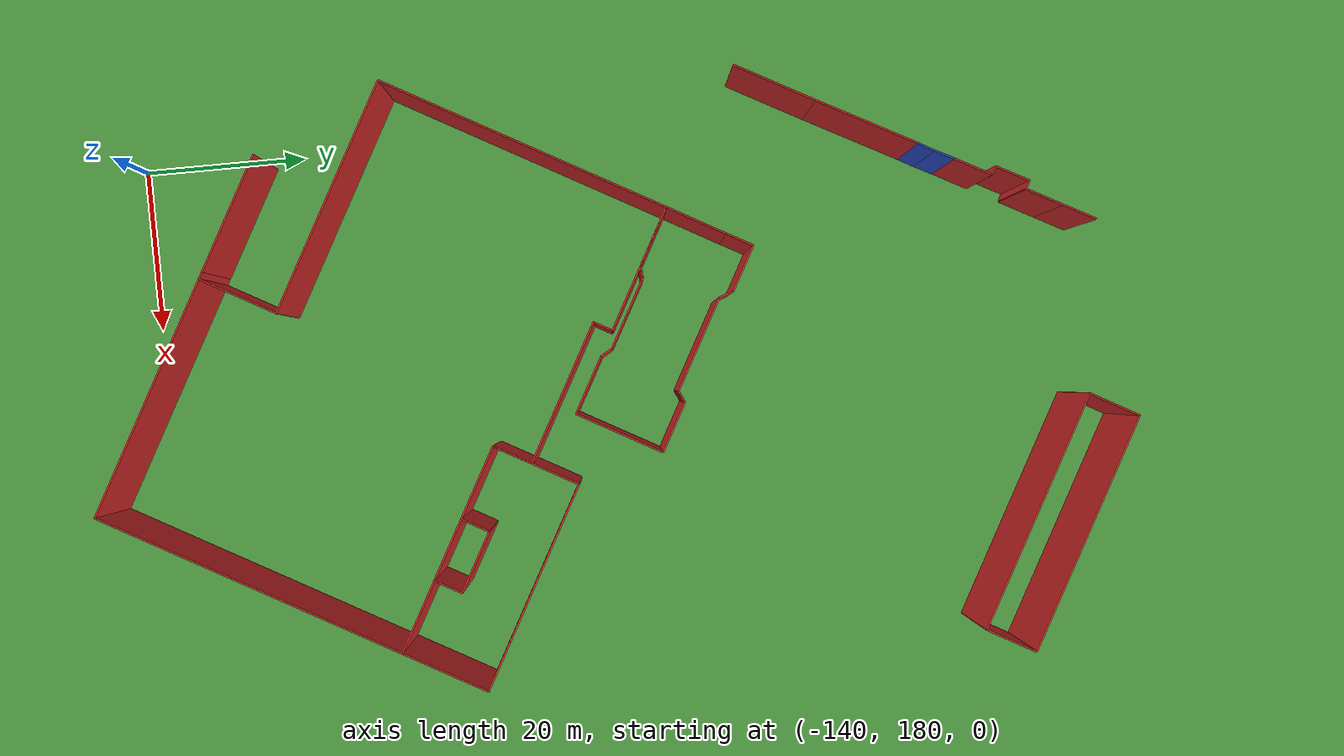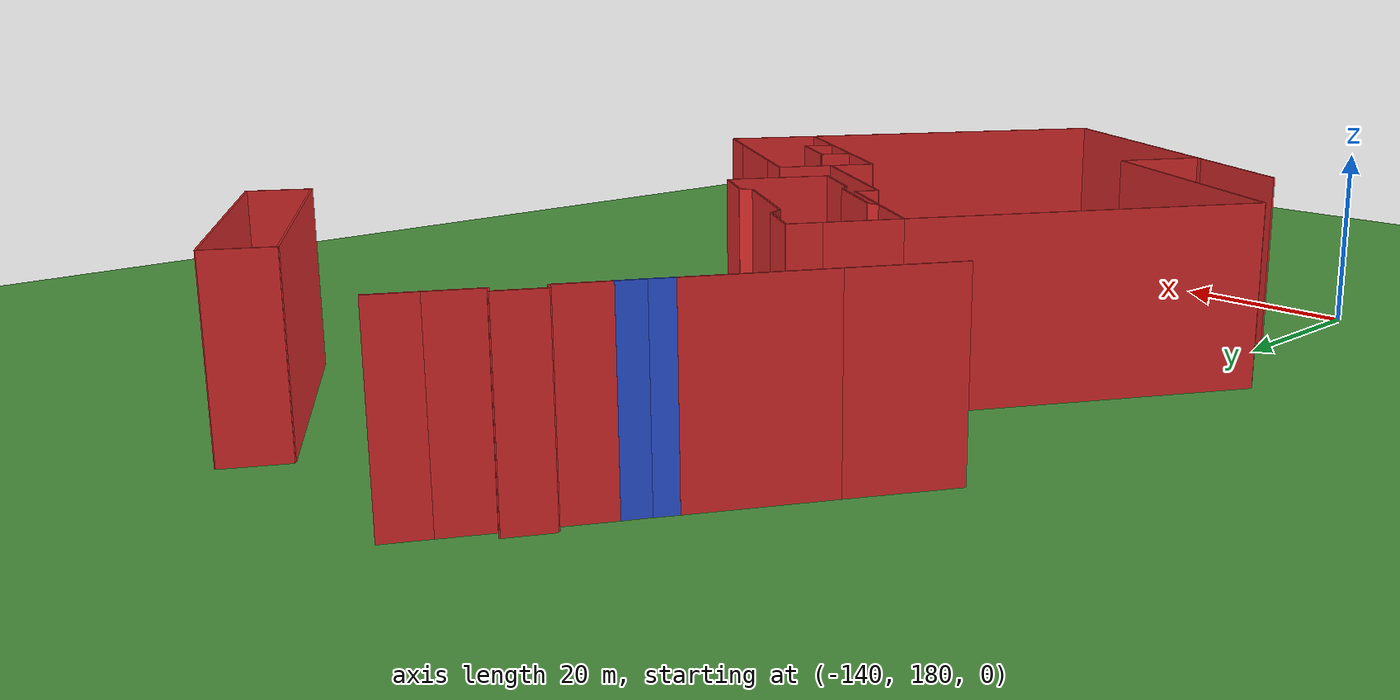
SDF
<sdf version="1.4">
 <world name="default">
  <model name="ground">
   <static>true</static>
   <link name="link">
    <collision name="collision">
     <geometry><plane><size>10000 10000</size><normal>0 0 1</normal></plane></geometry>
     <surface><friction><ode><mu>100</mu><mu2>50</mu2></ode></friction></surface>
    </collision>
    <visual name="visual">
     <pose>0 0 -1 0 0 0</pose>
     <geometry><plane><normal>0 0 1</normal><size>10000 10000</size></plane></geometry>
     <material>
      <script><uri>file://media/materials/scripts/gazebo.material</uri><name>Gazebo/Grass</name></script>
     </material>
    </visual>
   </link>
  </model>
  <include><uri>model://sun</uri></include>
  <model name="office_building_266170578">
   <static>true</static>
   <pose>-125.952255844 289.017301661 0.0 0 0 0</pose>
   <link name="office_building_266170578_0">
    <collision name="office_building_266170578_0">
     <geometry><box><size>4.81621688001 0.2 20.0</size></box></geometry>
    </collision>
    <visual name="office_building_266170578_0">
     <geometry><box><size>4.81621688001 0.2 20.0</size></box></geometry>
     <material>
      <script><uri>file://media/materials/scripts/gazebo.material</uri><name>Gazebo/Red</name></script>
     </material>
    </visual>
    <pose>0.696842534385 0.53481557752 9.0 0 0 1.07510579999</pose>
   </link>
   <link name="office_building_266170578_1">
    <collision name="office_building_266170578_1">
     <geometry><box><size>1.07577772841 0.2 20.0</size></box></geometry>
    </collision>
    <visual name="office_building_266170578_1">
     <geometry><box><size>1.07577772841 0.2 20.0</size></box></geometry>
     <material>
      <script><uri>file://media/materials/scripts/gazebo.material</uri><name>Gazebo/Red</name></script>
     </material>
    </visual>
    <pose>-0.921116629011 -1.32654261835 9.0 0 0 -0.49795429977</pose>
   </link>
  </model>
  <model name="office_building_266170575">
   <static>true</static>
   <pose>-128.385688273 286.014695271 0.0 0 0 0</pose>
   <link name="office_building_266170575_0">
    <collision name="office_building_266170575_0">
     <geometry><box><size>4.38974615655 0.2 20.0</size></box></geometry>
    </collision>
    <visual name="office_building_266170575_0">
     <geometry><box><size>4.38974615655 0.2 20.0</size></box></geometry>
     <material>
      <script><uri>file://media/materials/scripts/gazebo.material</uri><name>Gazebo/Red</name></script>
     </material>
    </visual>
    <pose>0.0 0.0 9.0 0 0 1.0772903887</pose>
   </link>
  </model>
  <model name="The Muse Hotel">
   <static>true</static>
   <pose>-138.866614714 264.271799401 0.0 0 0 0</pose>
   <link name="The Muse Hotel_0">
    <collision name="The Muse Hotel_0">
     <geometry><box><size>13.1884343296 0.2 20.0</size></box></geometry>
    </collision>
    <visual name="The Muse Hotel_0">
     <geometry><box><size>13.1884343296 0.2 20.0</size></box></geometry>
     <material>
      <script><uri>file://media/materials/scripts/gazebo.material</uri><name>Gazebo/Red</name></script>
     </material>
    </visual>
    <pose>2.74113509899 5.06617953824 9.0 0 0 1.07998821693</pose>
   </link>
   <link name="The Muse Hotel_1">
    <collision name="The Muse Hotel_1">
     <geometry><box><size>10.6865483698 0.2 20.0</size></box></geometry>
    </collision>
    <visual name="The Muse Hotel_1">
     <geometry><box><size>10.6865483698 0.2 20.0</size></box></geometry>
     <material>
      <script><uri>file://media/materials/scripts/gazebo.material</uri><name>Gazebo/Red</name></script>
     </material>
    </visual>
    <pose>-2.92462260816 -5.44098211217 9.0 0 0 1.07166077882</pose>
   </link>
  </model>
  <model name="office_building_266170573">
   <static>true</static>
   <pose>-129.562643282 282.318567619 0.0 0 0 0</pose>
   <link name="office_building_266170573_0">
    <collision name="office_building_266170573_0">
     <geometry><box><size>1.07178069066 0.2 20.0</size></box></geometry>
    </collision>
    <visual name="office_building_266170573_0">
     <geometry><box><size>1.07178069066 0.2 20.0</size></box></geometry>
     <material>
      <script><uri>file://media/materials/scripts/gazebo.material</uri><name>Gazebo/Red</name></script>
     </material>
    </visual>
    <pose>0.609776385693 1.51045249202 9.0 0 0 2.65054324767</pose>
   </link>
   <link name="office_building_266170573_1">
    <collision name="office_building_266170573_1">
     <geometry><box><size>4.85856402104 0.2 20.0</size></box></geometry>
    </collision>
    <visual name="office_building_266170573_1">
     <geometry><box><size>4.85856402104 0.2 20.0</size></box></geometry>
     <material>
      <script><uri>file://media/materials/scripts/gazebo.material</uri><name>Gazebo/Red</name></script>
     </material>
    </visual>
    <pose>-0.0686038249688 -0.881576208618 9.0 0 0 1.07721642643</pose>
   </link>
  </model>
  <model name="office_building_266170569">
   <static>true</static>
   <pose>-88.5199435659 219.577163471 0.0 0 0 0</pose>
   <link name="office_building_266170569_0">
    <collision name="office_building_266170569_0">
     <geometry><box><size>3.64909950902 0.2 20.0</size></box></geometry>
    </collision>
    <visual name="office_building_266170569_0">
     <geometry><box><size>3.64909950902 0.2 20.0</size></box></geometry>
     <material>
      <script><uri>file://media/materials/scripts/gazebo.material</uri><name>Gazebo/Red</name></script>
     </material>
    </visual>
    <pose>2.79733237666 -4.90419078675 9.0 0 0 -2.07662020923</pose>
   </link>
   <link name="office_building_266170569_1">
    <collision name="office_building_266170569_1">
     <geometry><box><size>7.9817855313 0.2 20.0</size></box></geometry>
    </collision>
    <visual name="office_building_266170569_1">
     <geometry><box><size>7.9817855313 0.2 20.0</size></box></geometry>
     <material>
      <script><uri>file://media/materials/scripts/gazebo.material</uri><name>Gazebo/Red</name></script>
     </material>
    </visual>
    <pose>0.18991476499 -1.37501116452 9.0 0 0 -0.505654175781</pose>
   </link>
   <link name="office_building_266170569_2">
    <collision name="office_building_266170569_2">
     <geometry><box><size>3.6545025171 0.2 20.0</size></box></geometry>
    </collision>
    <visual name="office_building_266170569_2">
     <geometry><box><size>3.6545025171 0.2 20.0</size></box></geometry>
     <material>
      <script><uri>file://media/materials/scripts/gazebo.material</uri><name>Gazebo/Red</name></script>
     </material>
    </visual>
    <pose>-4.19115547094 -1.03797555307 9.0 0 0 1.06231061086</pose>
   </link>
   <link name="office_building_266170569_3">
    <collision name="office_building_266170569_3">
     <geometry><box><size>9.43505966403 0.2 20.0</size></box></geometry>
    </collision>
    <visual name="office_building_266170569_3">
     <geometry><box><size>9.43505966403 0.2 20.0</size></box></geometry>
     <material>
      <script><uri>file://media/materials/scripts/gazebo.material</uri><name>Gazebo/Red</name></script>
     </material>
    </visual>
    <pose>-9.21158602663 -0.355587733469 9.0 0 0 -0.50405181353</pose>
   </link>
   <link name="office_building_266170569_4">
    <collision name="office_building_266170569_4">
     <geometry><box><size>5.0588712845 0.2 20.0</size></box></geometry>
    </collision>
    <visual name="office_building_266170569_4">
     <geometry><box><size>5.0588712845 0.2 20.0</size></box></geometry>
     <material>
      <script><uri>file://media/materials/scripts/gazebo.material</uri><name>Gazebo/Red</name></script>
     </material>
    </visual>
    <pose>-12.1136391252 4.13379244418 9.0 0 0 -2.07806141253</pose>
   </link>
   <link name="office_building_266170569_5">
    <collision name="office_building_266170569_5">
     <geometry><box><size>6.15006828301 0.2 20.0</size></box></geometry>
    </collision>
    <visual name="office_building_266170569_5">
     <geometry><box><size>6.15006828301 0.2 20.0</size></box></geometry>
     <material>
      <script><uri>file://media/materials/scripts/gazebo.material</uri><name>Gazebo/Red</name></script>
     </material>
    </visual>
    <pose>-9.38921340961 9.03150440354 9.0 0 0 -2.07874555801</pose>
   </link>
   <link name="office_building_266170569_6">
    <collision name="office_building_266170569_6">
     <geometry><box><size>5.76691093643 0.2 20.0</size></box></geometry>
    </collision>
    <visual name="office_building_266170569_6">
     <geometry><box><size>5.76691093643 0.2 20.0</size></box></geometry>
     <material>
      <script><uri>file://media/materials/scripts/gazebo.material</uri><name>Gazebo/Red</name></script>
     </material>
    </visual>
    <pose>-5.3694770705 10.324263407 9.0 0 0 2.63699053114</pose>
   </link>
   <link name="office_building_266170569_7">
    <collision name="office_building_266170569_7">
     <geometry><box><size>14.6986018603 0.2 20.0</size></box></geometry>
    </collision>
    <visual name="office_building_266170569_7">
     <geometry><box><size>14.6986018603 0.2 20.0</size></box></geometry>
     <material>
      <script><uri>file://media/materials/scripts/gazebo.material</uri><name>Gazebo/Red</name></script>
     </material>
    </visual>
    <pose>3.58712274098 5.3756654028 9.0 0 0 2.63676079328</pose>
   </link>
   <link name="office_building_266170569_8">
    <collision name="office_building_266170569_8">
     <geometry><box><size>6.41398778348 0.2 20.0</size></box></geometry>
    </collision>
    <visual name="office_building_266170569_8">
     <geometry><box><size>6.41398778348 0.2 20.0</size></box></geometry>
     <material>
      <script><uri>file://media/materials/scripts/gazebo.material</uri><name>Gazebo/Red</name></script>
     </material>
    </visual>
    <pose>12.8272668766 0.271246522205 9.0 0 0 2.63720308891</pose>
   </link>
   <link name="office_building_266170569_9">
    <collision name="office_building_266170569_9">
     <geometry><box><size>11.2089116679 0.2 20.0</size></box></geometry>
    </collision>
    <visual name="office_building_266170569_9">
     <geometry><box><size>11.2089116679 0.2 20.0</size></box></geometry>
     <material>
      <script><uri>file://media/materials/scripts/gazebo.material</uri><name>Gazebo/Red</name></script>
     </material>
    </visual>
    <pose>12.9104755753 -6.17630855734 9.0 0 0 1.06315627336</pose>
   </link>
   <link name="office_building_266170569_10">
    <collision name="office_building_266170569_10">
     <geometry><box><size>9.45293200304 0.2 20.0</size></box></geometry>
    </collision>
    <visual name="office_building_266170569_10">
     <geometry><box><size>9.45293200304 0.2 20.0</size></box></geometry>
     <material>
      <script><uri>file://media/materials/scripts/gazebo.material</uri><name>Gazebo/Red</name></script>
     </material>
    </visual>
    <pose>6.04967241332 -8.78713603354 9.0 0 0 -0.505042129175</pose>
   </link>
  </model>
  <model name="Onassis High School">
   <static>true</static>
   <pose>-145.194025517 252.41280676 0.0 0 0 0</pose>
  </model>
  <model name="office_building_266170553">
   <static>true</static>
   <pose>-131.234079291 196.658929028 0.0 0 0 0</pose>
   <link name="office_building_266170553_0">
    <collision name="office_building_266170553_0">
     <geometry><box><size>30.2034435022 0.2 20.0</size></box></geometry>
    </collision>
    <visual name="office_building_266170553_0">
     <geometry><box><size>30.2034435022 0.2 20.0</size></box></geometry>
     <material>
      <script><uri>file://media/materials/scripts/gazebo.material</uri><name>Gazebo/Red</name></script>
     </material>
    </visual>
    <pose>-1.99684516476 7.99238693577 9.0 0 0 2.63717236154</pose>
   </link>
   <link name="office_building_266170553_1">
    <collision name="office_building_266170553_1">
     <geometry><box><size>10.0554311707 0.2 20.0</size></box></geometry>
    </collision>
    <visual name="office_building_266170553_1">
     <geometry><box><size>10.0554311707 0.2 20.0</size></box></geometry>
     <material>
      <script><uri>file://media/materials/scripts/gazebo.material</uri><name>Gazebo/Red</name></script>
     </material>
    </visual>
    <pose>8.77762649513 -3.69865926673 9.0 0 0 1.06262161852</pose>
   </link>
   <link name="office_building_266170553_2">
    <collision name="office_building_266170553_2">
     <geometry><box><size>0.940179392899 0.2 20.0</size></box></geometry>
    </collision>
    <visual name="office_building_266170553_2">
     <geometry><box><size>0.940179392899 0.2 20.0</size></box></geometry>
     <material>
      <script><uri>file://media/materials/scripts/gazebo.material</uri><name>Gazebo/Red</name></script>
     </material>
    </visual>
    <pose>5.91980802481 -7.86361914546 9.0 0 0 -0.504978380453</pose>
   </link>
   <link name="office_building_266170553_3">
    <collision name="office_building_266170553_3">
     <geometry><box><size>15.2572092771 0.2 20.0</size></box></geometry>
    </collision>
    <visual name="office_building_266170553_3">
     <geometry><box><size>15.2572092771 0.2 20.0</size></box></geometry>
     <material>
      <script><uri>file://media/materials/scripts/gazebo.material</uri><name>Gazebo/Red</name></script>
     </material>
    </visual>
    <pose>-1.16876655761 -3.94686536393 9.0 0 0 -0.504783442841</pose>
   </link>
  </model>
  <model name="Comfort Inn Midtown">
   <static>true</static>
   <pose>-115.609313291 243.794765405 0.0 0 0 0</pose>
   <link name="Comfort Inn Midtown_0">
    <collision name="Comfort Inn Midtown_0">
     <geometry><box><size>7.83624828557 0.2 20.0</size></box></geometry>
    </collision>
    <visual name="Comfort Inn Midtown_0">
     <geometry><box><size>7.83624828557 0.2 20.0</size></box></geometry>
     <material>
      <script><uri>file://media/materials/scripts/gazebo.material</uri><name>Gazebo/Red</name></script>
     </material>
    </visual>
    <pose>-10.7261984516 4.28811687154 9.0 0 0 -2.08077540337</pose>
   </link>
   <link name="Comfort Inn Midtown_1">
    <collision name="Comfort Inn Midtown_1">
     <geometry><box><size>3.47339120368 0.2 20.0</size></box></geometry>
    </collision>
    <visual name="Comfort Inn Midtown_1">
     <geometry><box><size>3.47339120368 0.2 20.0</size></box></geometry>
     <material>
      <script><uri>file://media/materials/scripts/gazebo.material</uri><name>Gazebo/Red</name></script>
     </material>
    </visual>
    <pose>-7.97395720626 9.22795041499 9.0 0 0 -2.07536706536</pose>
   </link>
   <link name="Comfort Inn Midtown_2">
    <collision name="Comfort Inn Midtown_2">
     <geometry><box><size>5.8927568142 0.2 20.0</size></box></geometry>
    </collision>
    <visual name="Comfort Inn Midtown_2">
     <geometry><box><size>5.8927568142 0.2 20.0</size></box></geometry>
     <material>
      <script><uri>file://media/materials/scripts/gazebo.material</uri><name>Gazebo/Red</name></script>
     </material>
    </visual>
    <pose>-4.55470991623 9.32469527602 9.0 0 0 2.63734967465</pose>
   </link>
   <link name="Comfort Inn Midtown_3">
    <collision name="Comfort Inn Midtown_3">
     <geometry><box><size>1.90223256973 0.2 20.0</size></box></geometry>
    </collision>
    <visual name="Comfort Inn Midtown_3">
     <geometry><box><size>1.90223256973 0.2 20.0</size></box></geometry>
     <material>
      <script><uri>file://media/materials/scripts/gazebo.material</uri><name>Gazebo/Red</name></script>
     </material>
    </visual>
    <pose>-1.63592198822 7.01256024901 9.0 0 0 1.93536200241</pose>
   </link>
   <link name="Comfort Inn Midtown_4">
    <collision name="Comfort Inn Midtown_4">
     <geometry><box><size>12.1021487058 0.2 20.0</size></box></geometry>
    </collision>
    <visual name="Comfort Inn Midtown_4">
     <geometry><box><size>12.1021487058 0.2 20.0</size></box></geometry>
     <material>
      <script><uri>file://media/materials/scripts/gazebo.material</uri><name>Gazebo/Red</name></script>
     </material>
    </visual>
    <pose>4.00153297774 3.2010964542 9.0 0 0 2.63747969365</pose>
   </link>
   <link name="Comfort Inn Midtown_5">
    <collision name="Comfort Inn Midtown_5">
     <geometry><box><size>1.52675200981 0.2 20.0</size></box></geometry>
    </collision>
    <visual name="Comfort Inn Midtown_5">
     <geometry><box><size>1.52675200981 0.2 20.0</size></box></geometry>
     <material>
      <script><uri>file://media/materials/scripts/gazebo.material</uri><name>Gazebo/Red</name></script>
     </material>
    </visual>
    <pose>9.9948523032 0.594068600426 9.0 0 0 -2.71505003976</pose>
   </link>
   <link name="Comfort Inn Midtown_6">
    <collision name="Comfort Inn Midtown_6">
     <geometry><box><size>6.45133857822 0.2 20.0</size></box></geometry>
    </collision>
    <visual name="Comfort Inn Midtown_6">
     <geometry><box><size>6.45133857822 0.2 20.0</size></box></geometry>
     <material>
      <script><uri>file://media/materials/scripts/gazebo.material</uri><name>Gazebo/Red</name></script>
     </material>
    </visual>
    <pose>13.5141309169 -0.648394699132 9.0 0 0 2.63741118372</pose>
   </link>
   <link name="Comfort Inn Midtown_7">
    <collision name="Comfort Inn Midtown_7">
     <geometry><box><size>11.3169355245 0.2 20.0</size></box></geometry>
    </collision>
    <visual name="Comfort Inn Midtown_7">
     <geometry><box><size>11.3169355245 0.2 20.0</size></box></geometry>
     <material>
      <script><uri>file://media/materials/scripts/gazebo.material</uri><name>Gazebo/Red</name></script>
     </material>
    </visual>
    <pose>13.5861980767 -7.15072027739 9.0 0 0 1.06284086241</pose>
   </link>
   <link name="Comfort Inn Midtown_8">
    <collision name="Comfort Inn Midtown_8">
     <geometry><box><size>7.47028019875 0.2 20.0</size></box></geometry>
    </collision>
    <visual name="Comfort Inn Midtown_8">
     <geometry><box><size>7.47028019875 0.2 20.0</size></box></geometry>
     <material>
      <script><uri>file://media/materials/scripts/gazebo.material</uri><name>Gazebo/Red</name></script>
     </material>
    </visual>
    <pose>7.56489158821 -10.2879814217 9.0 0 0 -0.504903429809</pose>
   </link>
   <link name="Comfort Inn Midtown_9">
    <collision name="Comfort Inn Midtown_9">
     <geometry><box><size>1.56356591943 0.2 20.0</size></box></geometry>
    </collision>
    <visual name="Comfort Inn Midtown_9">
     <geometry><box><size>1.56356591943 0.2 20.0</size></box></geometry>
     <material>
      <script><uri>file://media/materials/scripts/gazebo.material</uri><name>Gazebo/Red</name></script>
     </material>
    </visual>
    <pose>3.90665722327 -7.80316825369 9.0 0 0 -1.04975220132</pose>
   </link>
   <link name="Comfort Inn Midtown_10">
    <collision name="Comfort Inn Midtown_10">
     <geometry><box><size>9.17364964608 0.2 20.0</size></box></geometry>
    </collision>
    <visual name="Comfort Inn Midtown_10">
     <geometry><box><size>9.17364964608 0.2 20.0</size></box></geometry>
     <material>
      <script><uri>file://media/materials/scripts/gazebo.material</uri><name>Gazebo/Red</name></script>
     </material>
    </visual>
    <pose>-0.496568496253 -4.905613802 9.0 0 0 -0.50509321753</pose>
   </link>
   <link name="Comfort Inn Midtown_11">
    <collision name="Comfort Inn Midtown_11">
     <geometry><box><size>1.46212226436 0.2 20.0</size></box></geometry>
    </collision>
    <visual name="Comfort Inn Midtown_11">
     <geometry><box><size>1.46212226436 0.2 20.0</size></box></geometry>
     <material>
      <script><uri>file://media/materials/scripts/gazebo.material</uri><name>Gazebo/Red</name></script>
     </material>
    </visual>
    <pose>-5.23896244862 -2.74924625871 9.0 0 0 0.0864844382213</pose>
   </link>
   <link name="Comfort Inn Midtown_12">
    <collision name="Comfort Inn Midtown_12">
     <geometry><box><size>7.61966468638 0.2 20.0</size></box></geometry>
    </collision>
    <visual name="Comfort Inn Midtown_12">
     <geometry><box><size>7.61966468638 0.2 20.0</size></box></geometry>
     <material>
      <script><uri>file://media/materials/scripts/gazebo.material</uri><name>Gazebo/Red</name></script>
     </material>
    </visual>
    <pose>-9.30307861874 -0.971918678894 9.0 0 0 -0.504175110409</pose>
   </link>
  </model>
  <model name="pub_0">
   <static>true</static>
   <pose>-131.912757719 277.169562192 0.0 0 0 0</pose>
   <link name="pub_0_0">
    <collision name="pub_0_0"><geometry><box><size>2.52129362257 0.2 20.0</size></box></geometry></collision>
    <visual name="pub_0_0">
     <geometry><box><size>2.52129362257 0.2 20.0</size></box></geometry>
     <material>
      <script><uri>file://media/materials/scripts/gazebo.material</uri><name>Gazebo/Blue</name></script>
     </material>
    </visual>
    <pose>0.552305889152 1.0078992832 9.0 0 0 1.09426727426</pose>
   </link>
   <link name="pub_0_1">
    <collision name="pub_0_1"><geometry><box><size>2.18787822348 0.2 20.0</size></box></geometry></collision>
    <visual name="pub_0_1">
     <geometry><box><size>2.18787822348 0.2 20.0</size></box></geometry>
     <material>
      <script><uri>file://media/materials/scripts/gazebo.material</uri><name>Gazebo/Blue</name></script>
     </material>
    </visual>
    <pose>-0.565280833004 -1.06405022171 9.0 0 0 1.05524184497</pose>
   </link>
  </model>
  <model name="U.S. Trust Building">
   <static>true</static>
   <pose>-110.601640664 215.148983784 0.0 0 0 0</pose>
   <link name="U.S. Trust Building_0">
    <collision name="U.S. Trust Building_0">
     <geometry><box><size>30.2034435022 0.2 20.0</size></box></geometry>
    </collision>
    <visual name="U.S. Trust Building_0">
     <geometry><box><size>30.2034435022 0.2 20.0</size></box></geometry>
     <material>
      <script><uri>file://media/materials/scripts/gazebo.material</uri><name>Gazebo/Red</name></script>
     </material>
    </visual>
    <pose>-22.6292837918 -10.4976678206 9.0 0 0 -0.504420292052</pose>
   </link>
   <link name="U.S. Trust Building_1">
    <collision name="U.S. Trust Building_1">
     <geometry><box><size>37.4370747357 0.2 20.0</size></box></geometry>
    </collision>
    <visual name="U.S. Trust Building_1">
     <geometry><box><size>37.4370747357 0.2 20.0</size></box></geometry>
     <material>
      <script><uri>file://media/materials/scripts/gazebo.material</uri><name>Gazebo/Red</name></script>
     </material>
    </visual>
    <pose>-26.7483485445 13.1576658255 9.0 0 0 -2.07858460714</pose>
   </link>
   <link name="U.S. Trust Building_2">
    <collision name="U.S. Trust Building_2">
     <geometry><box><size>7.61966468638 0.2 20.0</size></box></geometry>
    </collision>
    <visual name="U.S. Trust Building_2">
     <geometry><box><size>7.61966468638 0.2 20.0</size></box></geometry>
     <material>
      <script><uri>file://media/materials/scripts/gazebo.material</uri><name>Gazebo/Red</name></script>
     </material>
    </visual>
    <pose>-14.3107512456 27.6738629417 9.0 0 0 2.63741754318</pose>
   </link>
   <link name="U.S. Trust Building_3">
    <collision name="U.S. Trust Building_3">
     <geometry><box><size>8.39665570413 0.2 20.0</size></box></geometry>
    </collision>
    <visual name="U.S. Trust Building_3">
     <geometry><box><size>8.39665570413 0.2 20.0</size></box></geometry>
     <material>
      <script><uri>file://media/materials/scripts/gazebo.material</uri><name>Gazebo/Red</name></script>
     </material>
    </visual>
    <pose>-7.30003719963 23.8033960111 9.0 0 0 2.63691636937</pose>
   </link>
   <link name="U.S. Trust Building_4">
    <collision name="U.S. Trust Building_4">
     <geometry><box><size>2.46808244927 0.2 20.0</size></box></geometry>
    </collision>
    <visual name="U.S. Trust Building_4">
     <geometry><box><size>2.46808244927 0.2 20.0</size></box></geometry>
     <material>
      <script><uri>file://media/materials/scripts/gazebo.material</uri><name>Gazebo/Red</name></script>
     </material>
    </visual>
    <pose>-4.22559749777 20.6953155779 9.0 0 0 1.06260028294</pose>
   </link>
   <link name="U.S. Trust Building_5">
    <collision name="U.S. Trust Building_5">
     <geometry><box><size>18.3018039486 0.2 20.0</size></box></geometry>
    </collision>
    <visual name="U.S. Trust Building_5">
     <geometry><box><size>18.3018039486 0.2 20.0</size></box></geometry>
     <material>
      <script><uri>file://media/materials/scripts/gazebo.material</uri><name>Gazebo/Red</name></script>
     </material>
    </visual>
    <pose>3.1853721635 15.1950599567 9.0 0 0 2.63723017129</pose>
   </link>
   <link name="U.S. Trust Building_6">
    <collision name="U.S. Trust Building_6">
     <geometry><box><size>5.0588712845 0.2 20.0</size></box></geometry>
    </collision>
    <visual name="U.S. Trust Building_6">
     <geometry><box><size>5.0588712845 0.2 20.0</size></box></geometry>
     <material>
      <script><uri>file://media/materials/scripts/gazebo.material</uri><name>Gazebo/Red</name></script>
     </material>
    </visual>
    <pose>9.96805797296 8.56197213077 9.0 0 0 1.06353124106</pose>
   </link>
   <link name="U.S. Trust Building_7">
    <collision name="U.S. Trust Building_7">
     <geometry><box><size>9.43505966403 0.2 20.0</size></box></geometry>
    </collision>
    <visual name="U.S. Trust Building_7">
     <geometry><box><size>9.43505966403 0.2 20.0</size></box></geometry>
     <material>
      <script><uri>file://media/materials/scripts/gazebo.material</uri><name>Gazebo/Red</name></script>
     </material>
    </visual>
    <pose>12.8701110715 4.07259195312 9.0 0 0 2.63754084006</pose>
   </link>
   <link name="U.S. Trust Building_8">
    <collision name="U.S. Trust Building_8">
     <geometry><box><size>7.99151592822 0.2 20.0</size></box></geometry>
    </collision>
    <visual name="U.S. Trust Building_8">
     <geometry><box><size>7.99151592822 0.2 20.0</size></box></geometry>
     <material>
      <script><uri>file://media/materials/scripts/gazebo.material</uri><name>Gazebo/Red</name></script>
     </material>
    </visual>
    <pose>20.4979592389 -0.138975488709 9.0 0 0 2.63661274423</pose>
   </link>
   <link name="U.S. Trust Building_9">
    <collision name="U.S. Trust Building_9">
     <geometry><box><size>9.45293200304 0.2 20.0</size></box></geometry>
    </collision>
    <visual name="U.S. Trust Building_9">
     <geometry><box><size>9.45293200304 0.2 20.0</size></box></geometry>
     <material>
      <script><uri>file://media/materials/scripts/gazebo.material</uri><name>Gazebo/Red</name></script>
     </material>
    </visual>
    <pose>28.1313695114 -4.35895634695 9.0 0 0 2.63655052442</pose>
   </link>
   <link name="U.S. Trust Building_10">
    <collision name="U.S. Trust Building_10">
     <geometry><box><size>39.9599329876 0.2 20.0</size></box></geometry>
    </collision>
    <visual name="U.S. Trust Building_10">
     <geometry><box><size>39.9599329876 0.2 20.0</size></box></geometry>
     <material>
      <script><uri>file://media/materials/scripts/gazebo.material</uri><name>Gazebo/Red</name></script>
     </material>
    </visual>
    <pose>22.5544274553 -24.1057933179 9.0 0 0 1.06311380252</pose>
   </link>
   <link name="U.S. Trust Building_11">
    <collision name="U.S. Trust Building_11">
     <geometry><box><size>31.0039551384 0.2 20.0</size></box></geometry>
    </collision>
    <visual name="U.S. Trust Building_11">
     <geometry><box><size>31.0039551384 0.2 20.0</size></box></geometry>
     <material>
      <script><uri>file://media/materials/scripts/gazebo.material</uri><name>Gazebo/Red</name></script>
     </material>
    </visual>
    <pose>-0.73005792073 -34.0734272532 9.0 0 0 -0.504436752278</pose>
   </link>
   <link name="U.S. Trust Building_12">
    <collision name="U.S. Trust Building_12">
     <geometry><box><size>10.0554311707 0.2 20.0</size></box></geometry>
    </collision>
    <visual name="U.S. Trust Building_12">
     <geometry><box><size>10.0554311707 0.2 20.0</size></box></geometry>
     <material>
      <script><uri>file://media/materials/scripts/gazebo.material</uri><name>Gazebo/Red</name></script>
     </material>
    </visual>
    <pose>-11.8548121319 -22.1887140231 9.0 0 0 -2.07897103507</pose>
   </link>
  </model>
  <model name="office_building_266170593">
   <static>true</static>
   <pose>-89.5129321934 289.054633286 0.0 0 0 0</pose>
   <link name="office_building_266170593_0">
    <collision name="office_building_266170593_0">
     <geometry><box><size>6.48877012898 0.2 20.0</size></box></geometry>
    </collision>
    <visual name="office_building_266170593_0">
     <geometry><box><size>6.48877012898 0.2 20.0</size></box></geometry>
     <material>
      <script><uri>file://media/materials/scripts/gazebo.material</uri><name>Gazebo/Red</name></script>
     </material>
    </visual>
    <pose>-10.412039248 6.49344877696 9.0 0 0 -2.07911826679</pose>
   </link>
   <link name="office_building_266170593_1">
    <collision name="office_building_266170593_1">
     <geometry><box><size>30.6402129822 0.2 20.0</size></box></geometry>
    </collision>
    <visual name="office_building_266170593_1">
     <geometry><box><size>30.6402129822 0.2 20.0</size></box></geometry>
     <material>
      <script><uri>file://media/materials/scripts/gazebo.material</uri><name>Gazebo/Red</name></script>
     </material>
    </visual>
    <pose>4.57685857344 1.91935053096 9.0 0 0 2.63686935511</pose>
   </link>
   <link name="office_building_266170593_2">
    <collision name="office_building_266170593_2">
     <geometry><box><size>6.48875215992 0.2 20.0</size></box></geometry>
    </collision>
    <visual name="office_building_266170593_2">
     <geometry><box><size>6.48875215992 0.2 20.0</size></box></geometry>
     <material>
      <script><uri>file://media/materials/scripts/gazebo.material</uri><name>Gazebo/Red</name></script>
     </material>
    </visual>
    <pose>16.4075995128 -8.32308665146 9.0 0 0 1.06247484847</pose>
   </link>
   <link name="office_building_266170593_3">
    <collision name="office_building_266170593_3">
     <geometry><box><size>30.6402160425 0.2 20.0</size></box></geometry>
    </collision>
    <visual name="office_building_266170593_3">
     <geometry><box><size>30.6402160425 0.2 20.0</size></box></geometry>
     <material>
      <script><uri>file://media/materials/scripts/gazebo.material</uri><name>Gazebo/Red</name></script>
     </material>
    </visual>
    <pose>1.4187016914 -3.74898840546 9.0 0 0 -0.504722712382</pose>
   </link>
  </model>
  <model name="O’Brien’s">
   <static>true</static>
   <pose>-131.912757719 277.169562192 0.0 0 0 0</pose>
   <link name="O’Brien’s_0">
    <collision name="O’Brien’s_0"><geometry><box><size>2.52129362257 0.2 20.0</size></box></geometry></collision>
    <visual name="O’Brien’s_0">
     <geometry><box><size>2.52129362257 0.2 20.0</size></box></geometry>
     <material>
      <script><uri>file://media/materials/scripts/gazebo.material</uri><name>Gazebo/Red</name></script>
     </material>
    </visual>
    <pose>0.552305889152 1.0078992832 9.0 0 0 1.09426727426</pose>
   </link>
   <link name="O’Brien’s_1">
    <collision name="O’Brien’s_1"><geometry><box><size>2.18787822348 0.2 20.0</size></box></geometry></collision>
    <visual name="O’Brien’s_1">
     <geometry><box><size>2.18787822348 0.2 20.0</size></box></geometry>
     <material>
      <script><uri>file://media/materials/scripts/gazebo.material</uri><name>Gazebo/Red</name></script>
     </material>
    </visual>
    <pose>-0.565280833004 -1.06405022171 9.0 0 0 1.05524184497</pose>
   </link>
  </model>
  <model name="office_building_266170580">
   <static>true</static>
   <pose>-123.09251391 293.561246973 0.0 0 0 0</pose>
   <link name="office_building_266170580_0">
    <collision name="office_building_266170580_0">
     <geometry><box><size>4.29449681839 0.2 20.0</size></box></geometry>
    </collision>
    <visual name="office_building_266170580_0">
     <geometry><box><size>4.29449681839 0.2 20.0</size></box></geometry>
     <material>
      <script><uri>file://media/materials/scripts/gazebo.material</uri><name>Gazebo/Red</name></script>
     </material>
    </visual>
    <pose>0.0 0.0 9.0 0 0 1.07712015515</pose>
   </link>
  </model>
  <model name="office_building_266170582">
   <static>true</static>
   <pose>-122.075005235 295.452107049 0.0 0 0 0</pose>
  </model>
 </world>
</sdf>
